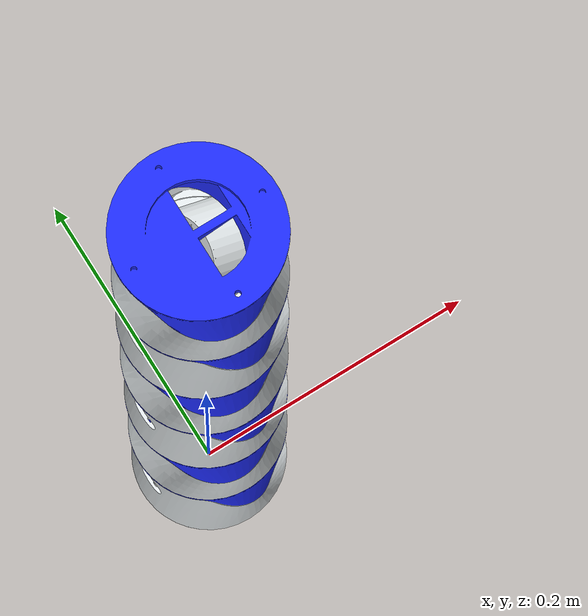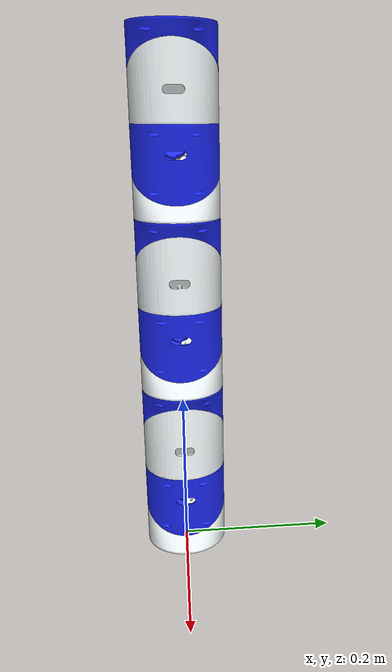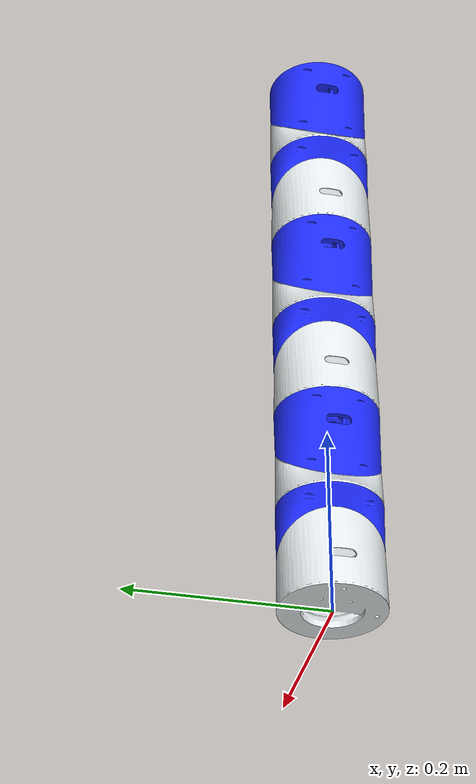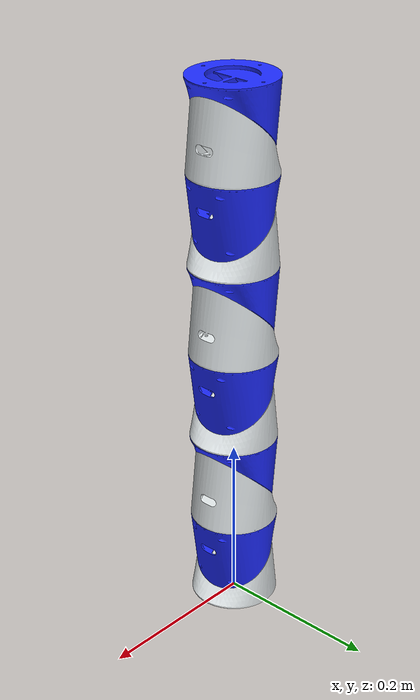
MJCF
<?xml version="1.0" encoding="utf-8"?>
<mujoco model="ZBOT_six">
  <compiler angle="radian" autolimits="true" meshdir="meshes" balanceinertia="true"/>
  <option timestep="0.002" integrator="implicitfast" gravity="0 0 -9.81"/>

  <default>
    <joint damping="0.05" frictionloss="0" armature="0.0036"/>
    <geom contype="1" conaffinity="1" condim="3" friction="0.8 0.1 0.1"/>
    <default class="a_link">
      <geom type="mesh" mesh="zbot_a_mesh" material="zbot_white"/>
    </default>
    <default class="b_link">
      <geom type="mesh" mesh="zbot_b_mesh" material="zbot_blue"/>
    </default>
    <default class="module_joint">
      <joint type="hinge" pos="0 0 0" axis="0 0 1" limited="true" range="-6.28 6.28"/>
    </default>
  </default>

  <asset>
    <mesh name="zbot_a_mesh" file="a.STL"/>
    <mesh name="zbot_b_mesh" file="b.STL"/>
    <material name="zbot_white" rgba="0.89804 0.92157 0.92941 1"/>
    <material name="zbot_blue" rgba="0.11702 0.17021 1 1"/>
  </asset>

  <worldbody>
    <body name="a1" pos="0 0 0.0">
      <freejoint name="root"/>
      <inertial pos="-0.0022495 -0.000029534 0.042888"
                mass="0.54171"
                fullinertia="0.00032672 0.00030489 0.00038858 0.00000018757 0.000027242 -0.00000010479"/>
      <geom name="a1_geom" class="a_link"/>

      <body name="b1" pos="-0.00021213 0 0.054788" quat="0.923879181 0 0.382684281 0">
        <joint name="joint1" class="module_joint"/>
        <inertial pos="-0.02292 -0.00016188 0.03226"
                  mass="0.17138"
                  fullinertia="0.00013655 0.00016418 0.00018815 0.0000011224 -0.000038072 -0.000000034693"/>
        <geom name="b1_geom" class="b_link"/>

        <body name="a2" pos="-0.038890846 0 0.03919071" quat="0 -0.382684281 0 0.923879181">
          <inertial pos="-0.0022495 -0.000029534 0.042888"
                    mass="0.54171"
                    fullinertia="0.00032672 0.00030489 0.00038858 0.00000018757 0.000027242 -0.00000010479"/>
          <geom name="a2_geom" class="a_link"/>

          <body name="b2" pos="-0.00021213 0 0.054788" quat="0.923879181 0 0.382684281 0">
            <joint name="joint2" class="module_joint"/>
            <inertial pos="-0.02292 -0.00016188 0.03226"
                      mass="0.17138"
                      fullinertia="0.00013655 0.00016418 0.00018815 0.0000011224 -0.000038072 -0.000000034693"/>
            <geom name="b2_geom" class="b_link"/>

            <body name="a3" pos="-0.038890846 0 0.03919071" quat="0 -0.382684281 0 0.923879181">
              <inertial pos="-0.0022495 -0.000029534 0.042888"
                        mass="0.54171"
                        fullinertia="0.00032672 0.00030489 0.00038858 0.00000018757 0.000027242 -0.00000010479"/>
              <geom name="a3_geom" class="a_link"/>

              <body name="b3" pos="-0.00021213 0 0.054788" quat="0.923879181 0 0.382684281 0">
                <joint name="joint3" class="module_joint"/>
                <inertial pos="-0.02292 -0.00016188 0.03226"
                          mass="0.17138"
                          fullinertia="0.00013655 0.00016418 0.00018815 0.0000011224 -0.000038072 -0.000000034693"/>
                <geom name="b3_geom" class="b_link"/>

                <body name="a4" pos="-0.038890846 0 0.03919071" quat="0 -0.382684281 0 0.923879181">
                  <inertial pos="-0.0022495 -0.000029534 0.042888"
                            mass="0.54171"
                            fullinertia="0.00032672 0.00030489 0.00038858 0.00000018757 0.000027242 -0.00000010479"/>
                  <geom name="a4_geom" class="a_link"/>

                  <body name="b4" pos="-0.00021213 0 0.054788" quat="0.923879181 0 0.382684281 0">
                    <joint name="joint4" class="module_joint"/>
                    <inertial pos="-0.02292 -0.00016188 0.03226"
                              mass="0.17138"
                              fullinertia="0.00013655 0.00016418 0.00018815 0.0000011224 -0.000038072 -0.000000034693"/>
                    <geom name="b4_geom" class="b_link"/>

                    <body name="a5" pos="-0.038890846 0 0.03919071" quat="0 -0.382684281 0 0.923879181">
                      <inertial pos="-0.0022495 -0.000029534 0.042888"
                                mass="0.54171"
                                fullinertia="0.00032672 0.00030489 0.00038858 0.00000018757 0.000027242 -0.00000010479"/>
                      <geom name="a5_geom" class="a_link"/>

                      <body name="b5" pos="-0.00021213 0 0.054788" quat="0.923879181 0 0.382684281 0">
                        <joint name="joint5" class="module_joint"/>
                        <inertial pos="-0.02292 -0.00016188 0.03226"
                                  mass="0.17138"
                                  fullinertia="0.00013655 0.00016418 0.00018815 0.0000011224 -0.000038072 -0.000000034693"/>
                        <geom name="b5_geom" class="b_link"/>

                        <body name="a6" pos="-0.038890846 0 0.03919071" quat="0 -0.382684281 0 0.923879181">
                          <inertial pos="-0.0022495 -0.000029534 0.042888"
                                    mass="0.54171"
                                    fullinertia="0.00032672 0.00030489 0.00038858 0.00000018757 0.000027242 -0.00000010479"/>
                          <geom name="a6_geom" class="a_link"/>

                          <body name="b6" pos="-0.00021213 0 0.054788" quat="0.923879181 0 0.382684281 0">
                            <joint name="joint6" class="module_joint"/>
                            <inertial pos="-0.02292 -0.00016188 0.03226"
                                      mass="0.17138"
                                      fullinertia="0.00013655 0.00016418 0.00018815 0.0000011224 -0.000038072 -0.000000034693"/>
                            <geom name="b6_geom" class="b_link"/>
                          </body>
                        </body>
                      </body>
                    </body>
                  </body>
                </body>
              </body>
            </body>
          </body>
        </body>
      </body>
    </body>
  </worldbody>

</mujoco>
